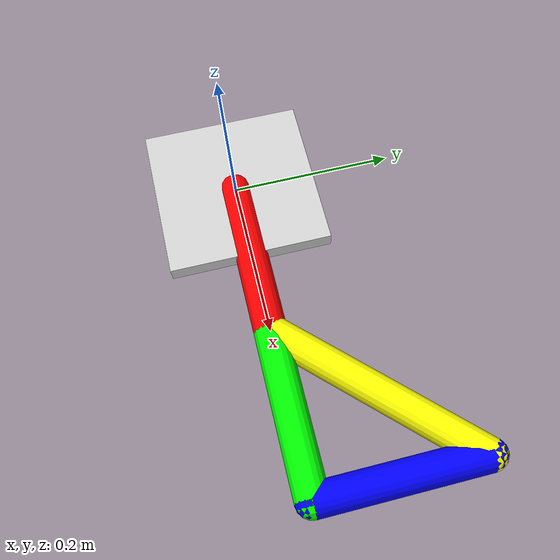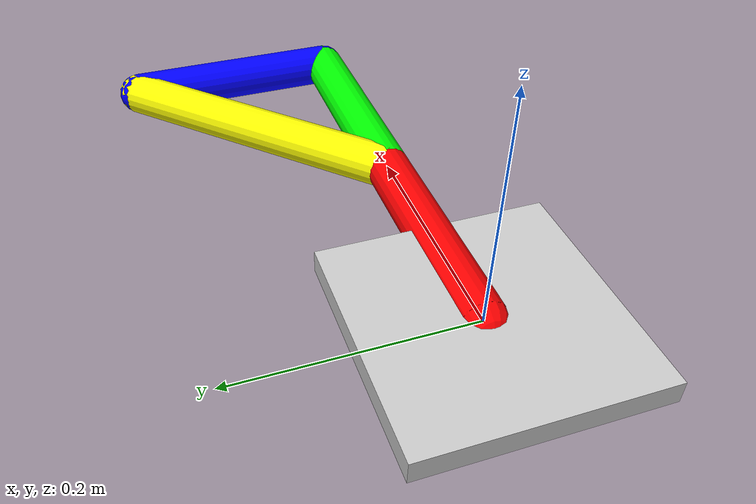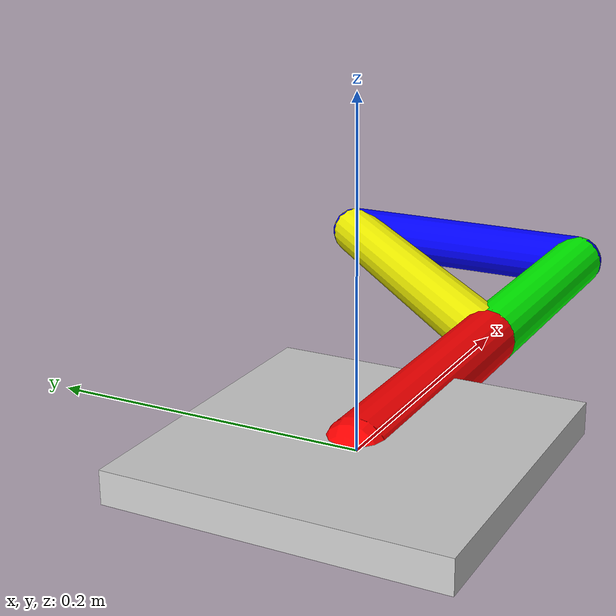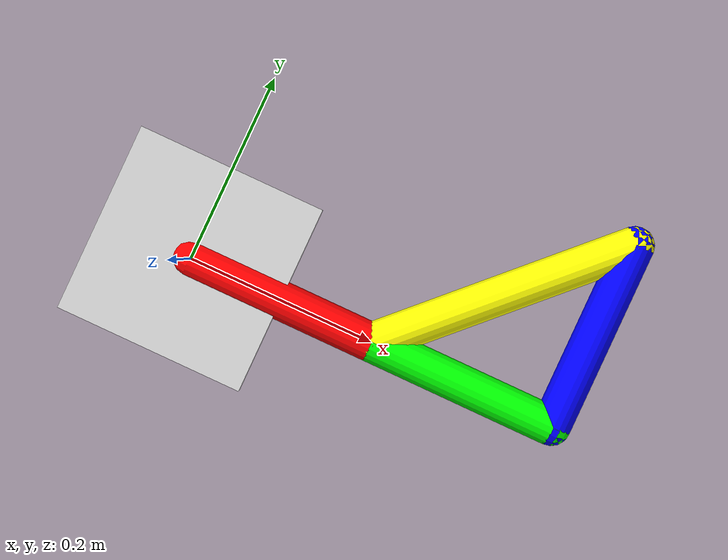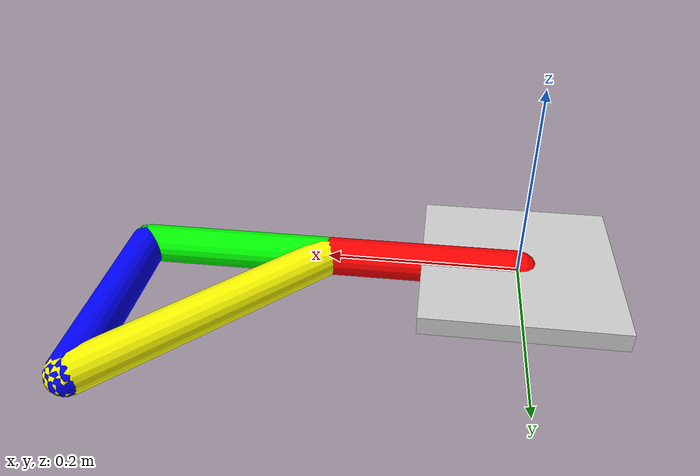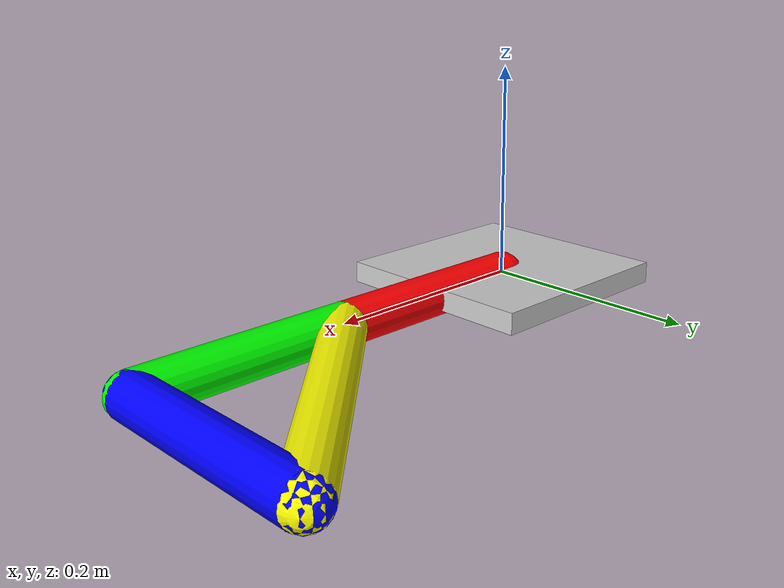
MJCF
<mujoco>
  <compiler angle="radian" coordinate="local"/>
  <option timestep="0.001" gravity="0 0 -9.81"/>

  <worldbody>
    <!-- Базовая точка (фиксированная) -->
    <body name="base" pos="0 0 0">
      <geom type="box" size="0.1 0.1 0.01" rgba="0.8 0.8 0.8 1"/>

      <!-- Первое звено (фиксированное к основанию) -->
      <body name="link1" pos="0 0 0">
        <joint name="joint1" type="hinge" axis="0 0 1" pos="0 0 0"/>
        <geom type="capsule" fromto="0 0 0 0.2 0 0" size="0.02" rgba="1 0 0 1"/>

        <!-- Точка для отслеживания траектории (на месте сочленения первого и второго звена) -->
        <site name="tracker" pos="0.2 0 0" size="0.01" rgba="1 0 1 1"/>

        <!-- Второе звено -->
        <body name="link2" pos="0.2 0 0">
          <joint name="joint2" type="hinge" axis="0 0 1" pos="0 0 0"/>
          <geom type="capsule" fromto="0 0 0 0.2 0 0" size="0.02" rgba="0 1 0 1"/>

          <!-- Третье звено -->
          <body name="link3" pos="0.2 0 0">
            <joint name="joint3" type="hinge" axis="0 0 1" pos="0 0 0"/>
            <geom type="capsule" fromto="0 0 0 0 0.2 0" size="0.02" rgba="0 0 1 1"/>

            <!-- Четвертое звено (замыкает контур) -->
            <body name="link4" pos="0 0.2 0">
              <joint name="joint4" type="hinge" axis="0 0 1" pos="0 0 0"/>
              <geom type="capsule" fromto="0 0 0 -0.2 -0.2 0" size="0.02" rgba="1 1 0 1"/>
            </body>
          </body>
        </body>
      </body>
    </body>
  </worldbody>

  <actuator>
    <!-- Привод на первом шарнире -->
    <motor joint="joint1" ctrlrange="-10 10" gear="1"/>
  </actuator>
</mujoco>
